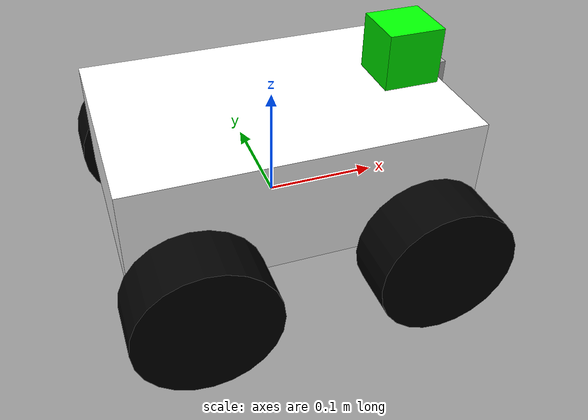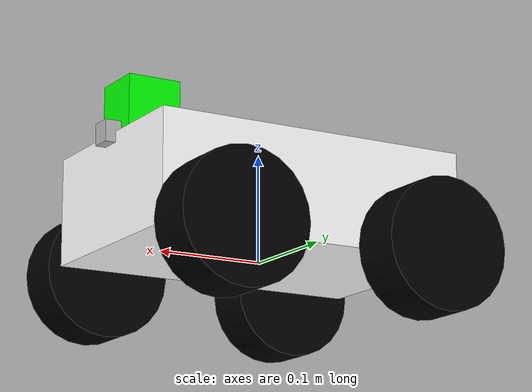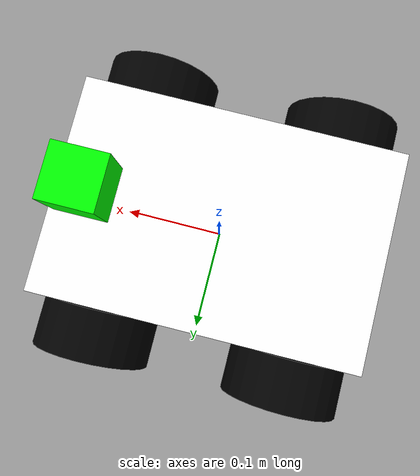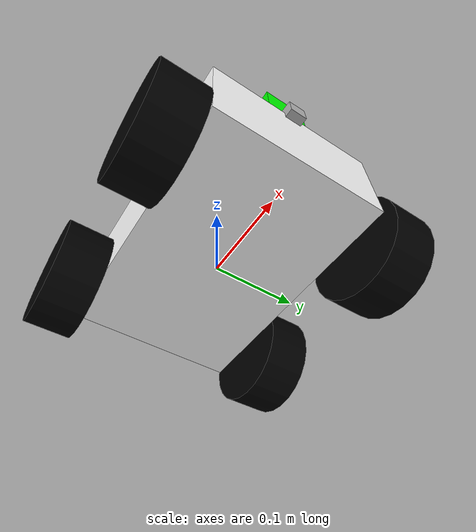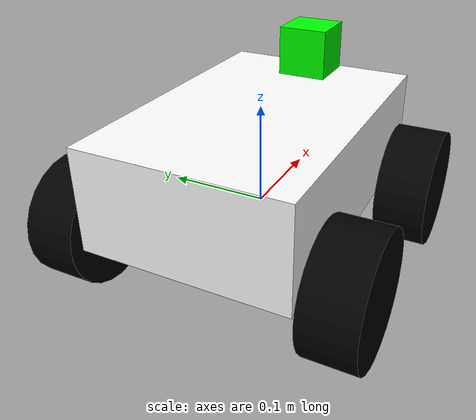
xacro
<?xml version="1.0"?>

<robot name="robot_sim" xmlns:xacro="http://www.ros.org/wiki/xacro">

  <xacro:property name="length_wheel" value="0.05" />
  <xacro:property name="radius_wheel" value="0.06" />
  <xacro:property name="PI" value="3.1415926"/>

  <!-- Odin1 nominal rates. Override with odin1_*_fps:=15 when expanding xacro. -->
  <xacro:arg name="odin1_depth_fps" default="10.0" />
  <xacro:arg name="odin1_rgb_fps" default="10.0" />
  <xacro:arg name="odin1_imu_fps" default="100.0" />
  <!--
    Gazebo Classic does not model range as a function of target reflectivity.
    70 m represents the 90% reflectivity case; use 30 for the 10% case.
  -->
  <xacro:arg name="odin1_depth_max_range" default="70.0" />
  <xacro:macro name="default_inertial" params="mass">
    <inertial>
      <mass value="${mass}" />
      <inertia ixx="0.01" ixy="0.0" ixz="0.0"
                    iyy="0.01" iyz="0.0" izz="0.01" />
    </inertial>
  </xacro:macro>

  <!-- base_link to livox_frame -->
  <xacro:arg name="xyz" default="0.12 0.0 0.175" />
  <xacro:arg name="rpy" default="0 0 0" />

  <link name="dummy"/>

  <link name="base_link">
    <visual>
      <geometry>
        <box size="0.2 .3 .1"/>
      </geometry>
      <origin rpy="0 0 ${PI/2}" xyz="0 0 0.05"/>
      <material name="white">
        <color rgba="1 1 1 1"/>
      </material>
    </visual>
    <collision>
      <geometry>
        <box size="0.2 .3 0.1"/>
      </geometry>
      <origin rpy="0 0 ${PI/2}" xyz="0 0 0.05"/>
    </collision>
    <xacro:default_inertial mass="8.2"/>
  </link>

  <joint name="dummy_joint" type="fixed">
     <parent link="dummy"/>
     <child link="base_link"/>
  </joint>

  <link name="wheel_1">
    <visual>
      <geometry>
        <cylinder length="${length_wheel}" radius="${radius_wheel}"/>
      </geometry>
      <origin rpy="0 0 0" xyz="0 0 0"/>
      <material name="black">
        <color rgba="0 0 0 1"/>
      </material>
    </visual>
    <collision>
      <geometry>
        <cylinder length="${length_wheel}" radius="${radius_wheel}"/>
      </geometry>
    </collision>
    <mu1>0.5</mu1>
    <mu2>0.5</mu2>
    <xacro:default_inertial mass="0.5"/>
  </link>

  <link name="wheel_2">
    <visual>
      <geometry>
        <cylinder length="${length_wheel}" radius="${radius_wheel}"/>
      </geometry>
      <origin rpy="0 0 0" xyz="0 0 0"/>
      <material name="black"/>
    </visual>
    <collision>
      <geometry>
        <cylinder length="${length_wheel}" radius="${radius_wheel}"/>
      </geometry>
    </collision>
    <mu1>0.5</mu1>
    <mu2>0.5</mu2>
    <xacro:default_inertial mass="0.5"/>
  </link>

  <link name="wheel_3">
    <visual>
      <geometry>
        <cylinder length="${length_wheel}" radius="${radius_wheel}"/>
      </geometry>
      <origin rpy="0 0 0" xyz="0 0 0"/>
      <material name="black"/>
    </visual>
    <collision>
      <geometry>
        <cylinder length="${length_wheel}" radius="${radius_wheel}"/>
      </geometry>
    </collision>
    <mu1>0.5</mu1>
    <mu2>0.5</mu2>
    <xacro:default_inertial mass="0.5"/>
  </link>

  <link name="wheel_4">
    <visual>
      <geometry>
        <cylinder length="${length_wheel}" radius="${radius_wheel}"/>
      </geometry>
      <origin rpy="0 0 0" xyz="0 0 0" />
      <material name="black"/>
    </visual>
    <collision>
      <geometry>
        <cylinder length="${length_wheel}" radius="${radius_wheel}"/>
      </geometry>
    </collision>
    <mu1>0.5</mu1>
    <mu2>0.5</mu2>
    <xacro:default_inertial mass="0.5"/>
  </link>

  <joint name="base_to_wheel1" type="continuous">
    <parent link="base_link"/>
    <child link="wheel_1"/>
    <origin rpy="${-PI/2} 0 0" xyz="0.1 0.13 0"/>
    <axis xyz="0 0 1" />
  </joint>

  <joint name="base_to_wheel2" type="continuous">
    <axis xyz="0 0 1" />
    <anchor xyz="0 0 0" />
    <limit effort="100" velocity="100" />
    <parent link="base_link"/>
    <child link="wheel_2"/>
    <origin rpy="${-PI/2} 0 0" xyz="-0.1 0.13 0"/>
  </joint>

  <joint name="base_to_wheel3" type="continuous">
    <parent link="base_link"/>
    <axis xyz="0 0 1" />
    <child link="wheel_3"/>
    <origin rpy="${-PI/2} 0 0" xyz="0.1 -0.13 0"/>
  </joint>

  <joint name="base_to_wheel4" type="continuous">
    <parent link="base_link"/>
    <axis xyz="0 0 1" />
    <child link="wheel_4"/>
    <origin rpy="${-PI/2} 0 0" xyz="-0.1 -0.13 0"/>
  </joint>
   <!-- IMU joint -->
  <joint name="imu_joint" type="fixed">
    <axis xyz="0 1 0" />
    <origin xyz="0.12 0 0.125" rpy="0 0 0"/>
    <parent link="base_link"/>
    <child link="imu_link"/>
  </joint>

  <!-- Keep Gazebo from lumping imu_link into the model's root link. -->
  <gazebo reference="imu_joint">
    <preserveFixedJoint>true</preserveFixedJoint>
  </gazebo>

  <!-- IMU -->
  <link name="imu_link">
    <collision>
      <origin xyz="0 0 0" rpy="0 0 0"/>
      <geometry>
        <box size="0.05 0.05 0.05"/>
      </geometry>
    </collision>
    <visual>
      <origin xyz="0 0 0" rpy="0 0 0"/>
      <geometry>
        <box size="0.05 0.05 0.05"/>
      </geometry>
      <material name="green">
        <color rgba="0 1 0 1"/>
      </material>
    </visual>
    <inertial>
      <mass value="1e-2" />
      <origin xyz="0 0 0" rpy="0 0 0"/>
      <inertia ixx="1e-6" ixy="0" ixz="0" iyy="1e-6" iyz="0" izz="1e-6" />
    </inertial>
  </link>

  <!-- tof_depth_cameral-->
  <link name="tof_link">
    <inertial>
      <mass value="0.01"/>
      <origin rpy="0 0 0" xyz="0 0 0"/>
      <inertia ixx="1e-6" ixy="0" ixz="0" iyy="1e-6" iyz="0" izz="1e-6"/>
    </inertial>
    <visual>
      <geometry><box size="0.02 0.02 0.02"/></geometry>
    </visual>
  </link>

  <joint name="tof_joint" type="fixed">
    <parent link="base_link"/>
    <child link="tof_link"/>
    <origin xyz="0.15 0 0.1" rpy="0 0 0"/>
  </joint>

  <!-- ROS optical convention (Z forward, X right, Y down). -->
  <link name="tof_optical_frame"/>
  <joint name="tof_optical_joint" type="fixed">
    <parent link="tof_link"/>
    <child link="tof_optical_frame"/>
    <origin xyz="0 0 0" rpy="${-PI/2} 0 ${-PI/2}"/>
  </joint>

  <!-- rgb_cameral-->
  <link name="rgb_camera_link">
    <inertial>
      <mass value="0.01"/>
      <origin rpy="0 0 0" xyz="0 0 0"/>
      <inertia ixx="1e-6" ixy="0" ixz="0" iyy="1e-6" iyz="0" izz="1e-6"/>
    </inertial>
    <visual>
      <geometry><box size="0.02 0.02 0.02"/></geometry>
    </visual>
  </link>

  <joint name="rgb_camera_joint" type="fixed">
    <parent link="base_link"/>
    <child link="rgb_camera_link"/>
    <origin xyz="0.15 0 0.1" rpy="0 0 0"/>
  </joint>

  <link name="rgb_camera_optical_frame"/>
  <joint name="rgb_camera_optical_joint" type="fixed">
    <parent link="rgb_camera_link"/>
    <child link="rgb_camera_optical_frame"/>
    <origin xyz="0 0 0" rpy="${-PI/2} 0 ${-PI/2}"/>
  </joint>

  <!-- Gazebo插件设置相关 -->
  <gazebo reference="base_link">
    <material>Gazebo/Orange</material>
  </gazebo>
  <gazebo reference="wheel_1">
    <material>Gazebo/Red</material>
  </gazebo>
  <gazebo reference="wheel_2">
    <material>Gazebo/Black</material>
  </gazebo>
  <gazebo reference="wheel_3">
    <material>Gazebo/Red</material>
  </gazebo>
  <gazebo reference="wheel_4">
    <material>Gazebo/Black</material>
  </gazebo>

  <!-- Kinematic mecanum control for keyboard/SLAM testing. Odometry stays owned
       by the selected localization node, so this plugin must not publish TF. -->
  <gazebo>
    <plugin name="mecanum_controller" filename="libgazebo_ros_planar_move.so">
      <ros>
        <namespace>/</namespace>
        <remapping>cmd_vel:=cmd_vel_chassis</remapping>
      </ros>
      <update_rate>100</update_rate>
      <publish_rate>10</publish_rate>
      <publish_odom>false</publish_odom>
      <publish_odom_tf>false</publish_odom_tf>
      <odometry_frame>odom</odometry_frame>
      <robot_base_frame>base_link</robot_base_frame>
      <covariance_x>0.0001</covariance_x>
      <covariance_y>0.0001</covariance_y>
      <covariance_yaw>0.01</covariance_yaw>
    </plugin>
  </gazebo>

  <gazebo reference="tof_link">
    <sensor type="depth" name="odin1_depth_camera">
      <always_on>true</always_on>
      <visualize>false</visualize>
      <camera>
        <!-- 120 deg horizontal; vertical FOV is derived by Gazebo's pinhole model. -->
        <horizontal_fov>2.094395102</horizontal_fov>
        <!-- 432 kpts/s at 10 FPS and 648 kpts/s at the 15 FPS hardware limit. -->
        <image><width>240</width><height>180</height></image>
        <clip><near>0.2</near><far>$(arg odin1_depth_max_range)</far></clip>
        <!-- Simplified 3 cm (1 sigma) range-noise approximation. -->
        <noise><type>gaussian</type><mean>0</mean><stddev>0.03</stddev></noise>
      </camera>
      <update_rate>$(arg odin1_depth_fps)</update_rate>
    <!-- 加这个插件，数据才进 ROS2 -->
      <plugin name="tof_camera" filename="libgazebo_ros_camera.so">
        <ros>
          <namespace>/odin1/depthmod</namespace>
        </ros>
        <camera_name>depthmod</camera_name>
        <frame_name>tof_optical_frame</frame_name>
        <!-- ToF is monocular depth, so camera_info must not advertise a stereo baseline. -->
        <hack_baseline>0.0</hack_baseline>
        <min_depth>0.2</min_depth>
        <max_depth>$(arg odin1_depth_max_range)</max_depth>
      </plugin>
    </sensor>
  </gazebo>
  <gazebo reference="rgb_camera_link">
    <sensor type="camera" name="odin1_rgb_camera">
      <always_on>true</always_on>
      <visualize>false</visualize>
      <camera>
        <!-- 129 deg horizontal; the real 173 deg diagonal lens is not a pinhole lens. -->
        <horizontal_fov>2.251474735</horizontal_fov>
        <image><width>1600</width><height>1296</height><format>R8G8B8</format></image>
        <clip><near>0.05</near><far>100</far></clip>
        <noise><type>gaussian</type><mean>0</mean><stddev>0.01</stddev></noise>
      </camera>
      <update_rate>$(arg odin1_rgb_fps)</update_rate>
    <!-- 加这个插件，数据才进 ROS2 -->
      <plugin name="rgb_camera" filename="libgazebo_ros_camera.so">
        <ros>
          <namespace>/odin1/camera</namespace>
        </ros>
        <camera_name>rgbcamera</camera_name>
        <frame_name>rgb_camera_optical_frame</frame_name>
      </plugin>
    </sensor>
  </gazebo>

  <gazebo reference="imu_link">
    <sensor type="imu" name="odin1_imu">
      <always_on>true</always_on>
      <update_rate>$(arg odin1_imu_fps)</update_rate>
      <plugin name="odin1_imu_plugin" filename="libgazebo_ros_imu_sensor.so">
        <ros>
          <namespace>/odin1/imu</namespace>
          <remapping>~/out:=/odin1/imu/data_raw</remapping>
        </ros>
        <frame_name>imu_link</frame_name>
      </plugin>
    </sensor>
  </gazebo>

</robot>
